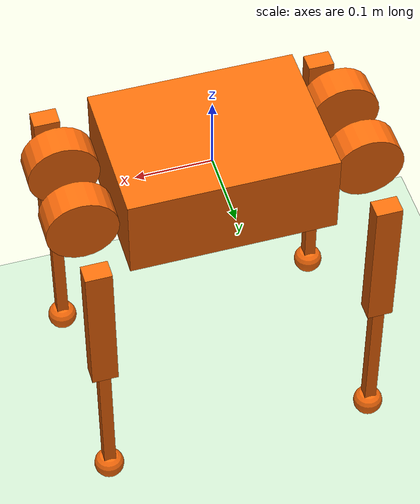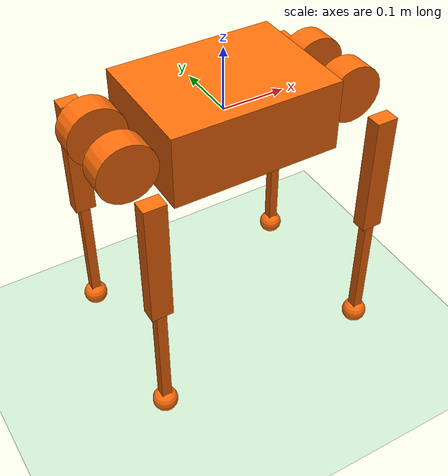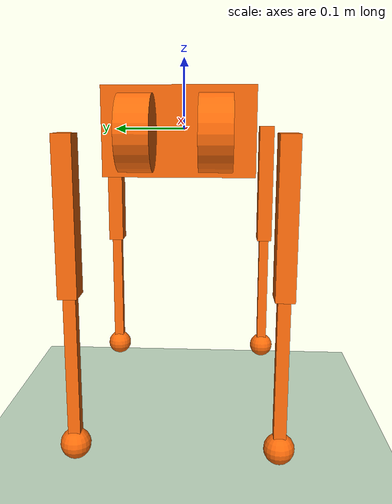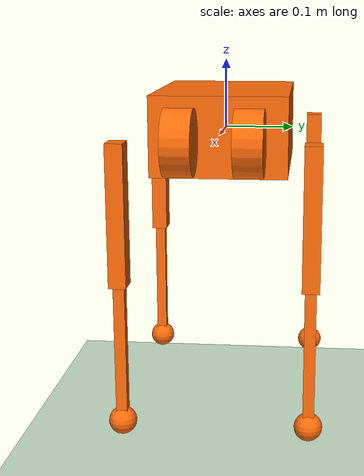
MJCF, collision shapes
<mujoco model="a1">
    <compiler angle="radian" meshdir="meshes/" coordinate="local" />
    <size njmax="500" nconmax="100" />
    <default>
        <joint limited="false" armature="0.01"/>>
        <geom contype="1" conaffinity="0" condim="3" margin="0.001" solref=".02 1" solimp=".8 .8 .01"/>
    </default>
    <asset>
        <mesh name="trunk" file="trunk.stl" />
        <mesh name="hip" file="hip.stl" />
        <mesh name="thigh_mirror" file="thigh_mirror.stl" />
        <mesh name="calf" file="calf.stl" />
        <mesh name="thigh" file="thigh.stl" />
        <texture builtin="flat" height="1278" mark="cross" markrgb="1 1 1" name="texgeom" random="0.01" rgb1="0.8 0.6 0.4" rgb2="0.8 0.6 0.4" type="cube" width="127"/>
        <texture builtin="checker" height="100" name="texplane" rgb1="0 0 0" rgb2="0.8 0.8 0.8" type="2d" width="100"/>
        <material name="MatPlane" reflectance="0.5" shininess="1" specular="1" texrepeat="60 60" texture="texplane"/>
        <material name="geom" texture="texgeom" texuniform="true"/>
        <texture type="skybox" builtin="gradient" rgb1="0.3 0.5 0.7" rgb2="0 0 0" width="512" height="512"/>
    </asset>
    <option timestep="0.0002" iterations="50" solver="PGS" gravity="0 0 -9.81">
        <flag energy="enable" gravity="enable"/>
    </option>
    <worldbody>
        <geom conaffinity="1" condim="3" friction = "1 0.5 0.5" material="MatPlane" name="floor" pos="0 0 -0.5" rgba="0.8 0.9 0.8 1" size="40 40 40" type="plane"/>
        <light directional="true" diffuse=".8 .8 .8" specular=".2 .2 .2" pos="0 0 0.5" dir="0 0 -1"/>
        <body name="Body" pos="0 0 0" euler="0 0 0">
            <inertial pos="0.012731 0.002186 0.000515" mass="4.713"
                fullinertia="1.62642913929261E-06 2.16302130147651E-06 2.57241198744282E-06 -2.15537782337987E-07 -2.3575284377688E-08 -1.07181784470334E-08"/>
            <joint type="free" name="free"/>
            <geom size="0.0005 0.0005 0.0005" type="box" contype="0" conaffinity="0" group="1" />
            <geom type="mesh" contype="0" conaffinity="0" group="1" rgba="1 0.423529 0.0392157 1" mesh="trunk" />
            <geom size="0.1335 0.097 0.057" type="box" rgba="1 0.423529 0.0392157 0" />
            <geom size="0.0005 0.0005 0.0005" type="box" contype="0" conaffinity="0" group="1" rgba="0.8 0 0 0" />
            <geom size="0.0005 0.0005 0.0005" type="box" rgba="0.8 0 0 0" />
            <body name="FR_hip" pos="0.183 -0.047 0">
                <inertial pos="-0.003311 -0.000635 3.1e-05" quat="0.507528 0.506268 0.491507 0.494499" mass="0.696" diaginertia="0.000807752 0.00055293 0.000468983" />
                <joint name="FR_hip_joint" pos="0 0 0" axis="1 0 0" limited="true" range="-0.1 0.1" />
                <geom quat="0 1 0 0" type="mesh" contype="0" conaffinity="0" group="1" rgba="1 0.423529 0.0392157 1" mesh="hip" />
                <geom size="0.046 0.02" quat="0.707107 0.707107 0 0" type="cylinder" rgba="1 0.423529 0.0392157 0" />
                <body name="FR_thigh" pos="0 -0.08505 0">
                    <inertial pos="-0.003237 0.022327 -0.027326" quat="0.999125 -0.00256393 -0.0409531 -0.00806091" mass="1.013" diaginertia="0.00555739 0.00513936 0.00133944" />
                    <joint name="FR_thigh_joint" pos="0 0 0" axis="0 1 0" limited="true" range="-1.0472 4.18879" />
                    <geom type="mesh" contype="0" conaffinity="0" group="1" rgba="1 0.423529 0.0392157 1" mesh="thigh_mirror" />
                    <geom size="0.1 0.01225 0.017" pos="0 0 -0.1" quat="0.707107 0 0.707107 0" type="box" rgba="1 0.423529 0.0392157 0" />
                    <body name="FR_calf" pos="0 0 -0.2">
                        <inertial pos="0.00472659 0 -0.131975" quat="0.706886 0.017653 0.017653 0.706886" mass="0.226" diaginertia="0.00340344 0.00339393 3.54834e-05" />
                        <joint name="FR_calf_joint" pos="0 0 0" axis="0 1 0" limited="true" range="-2.69653 -0.916298" />
                        <geom type="mesh" contype="0" conaffinity="0" group="1" rgba="1 0.423529 0.0392157 1" mesh="calf" />
                        <geom size="0.1 0.008 0.008" pos="0 0 -0.1" quat="0.707107 0 0.707107 0" type="box" rgba="1 0.423529 0.0392157 0" />
                        <geom size="0.01" pos="0 0 -0.2" contype="0" conaffinity="0" group="1" rgba="1 0.423529 0.0392157 1" />
                        <geom size="0.02" pos="0 0 -0.2" rgba="1 0.423529 0.0392157 0" />
                    </body>
                </body>
            </body>
            <body name="FL_hip" pos="0.183 0.047 0">
                <inertial pos="-0.003311 0.000635 3.1e-05" quat="0.494499 0.491507 0.506268 0.507528" mass="0.696" diaginertia="0.000807752 0.00055293 0.000468983" />
                <joint name="FL_hip_joint" pos="0 0 0" axis="1 0 0" limited="true" range="-0.1 0.1" />
                <geom type="mesh" contype="0" conaffinity="0" group="1" rgba="1 0.423529 0.0392157 1" mesh="hip" />
                <geom size="0.046 0.02" quat="0.707107 0.707107 0 0" type="cylinder" rgba="1 0.423529 0.0392157 0" />
                <body name="FL_thigh" pos="0 0.08505 0">
                    <inertial pos="-0.003237 -0.022327 -0.027326" quat="0.999125 0.00256393 -0.0409531 0.00806091" mass="1.013" diaginertia="0.00555739 0.00513936 0.00133944" />
                    <joint name="FL_thigh_joint" pos="0 0 0" axis="0 1 0" limited="true" range="-1.0472 4.18879" />
                    <geom type="mesh" contype="0" conaffinity="0" group="1" rgba="1 0.423529 0.0392157 1" mesh="thigh" />
                    <geom size="0.1 0.01225 0.017" pos="0 0 -0.1" quat="0.707107 0 0.707107 0" type="box" rgba="1 0.423529 0.0392157 0" />
                    <body name="FL_calf" pos="0 0 -0.2">
                        <inertial pos="0.00472659 0 -0.131975" quat="0.706886 0.017653 0.017653 0.706886" mass="0.226" diaginertia="0.00340344 0.00339393 3.54834e-05" />
                        <joint name="FL_calf_joint" pos="0 0 0" axis="0 1 0" limited="true" range="-2.69653 -0.916298" />
                        <geom type="mesh" contype="0" conaffinity="0" group="1" rgba="1 0.423529 0.0392157 1" mesh="calf" />
                        <geom size="0.1 0.008 0.008" pos="0 0 -0.1" quat="0.707107 0 0.707107 0" type="box" rgba="1 0.423529 0.0392157 0" />
                        <geom size="0.01" pos="0 0 -0.2" contype="0" conaffinity="0" group="1" rgba="1 0.423529 0.0392157 0" />
                        <geom size="0.02" pos="0 0 -0.2" rgba="1 0.423529 0.0392157 0" />
                    </body>
                </body>
            </body>
            <body name="RR_hip" pos="-0.183 -0.047 0">
                <inertial pos="0.003311 -0.000635 3.1e-05" quat="0.491507 0.494499 0.507528 0.506268" mass="0.696" diaginertia="0.000807752 0.00055293 0.000468983" />
                <joint name="RR_hip_joint" pos="0 0 0" axis="1 0 0" limited="true" range="-0.1 0.1" />
                <geom quat="0 0 0 -1" type="mesh" contype="0" conaffinity="0" group="1" rgba="1 0.423529 0.0392157 1" mesh="hip" />
                <geom size="0.046 0.02" quat="0.707107 0.707107 0 0" type="cylinder" rgba="1 0.423529 0.0392157 0" />
                <body name="RR_thigh" pos="0 -0.08505 0">
                    <inertial pos="-0.003237 0.022327 -0.027326" quat="0.999125 -0.00256393 -0.0409531 -0.00806091" mass="1.013" diaginertia="0.00555739 0.00513936 0.00133944" />
                    <joint name="RR_thigh_joint" pos="0 0 0" axis="0 1 0" limited="true" range="-1.0472 4.18879" />
                    <geom type="mesh" contype="0" conaffinity="0" group="1" rgba="1 0.423529 0.0392157 1" mesh="thigh_mirror" />
                    <geom size="0.1 0.01225 0.017" pos="0 0 -0.1" quat="0.707107 0 0.707107 0" type="box" rgba="1 0.423529 0.0392157 0" />
                    <body name="RR_calf" pos="0 0 -0.2">
                        <inertial pos="0.00472659 0 -0.131975" quat="0.706886 0.017653 0.017653 0.706886" mass="0.226" diaginertia="0.00340344 0.00339393 3.54834e-05" />
                        <joint name="RR_calf_joint" pos="0 0 0" axis="0 1 0" limited="true" range="-2.69653 -0.916298" />
                        <geom type="mesh" contype="0" conaffinity="0" group="1" rgba="1 0.423529 0.0392157 1" mesh="calf" />
                        <geom size="0.1 0.008 0.008" pos="0 0 -0.1" quat="0.707107 0 0.707107 0" type="box" rgba="1 0.423529 0.0392157 0" />
                        <geom size="0.01" pos="0 0 -0.2" contype="0" conaffinity="0" group="1" rgba="1 0.423529 0.0392157 0" />
                        <geom size="0.02" pos="0 0 -0.2" rgba="1 0.423529 0.0392157 0" />
                    </body>
                </body>
            </body>
            <body name="RL_hip" pos="-0.183 0.047 0">
                <inertial pos="0.003311 0.000635 3.1e-05" quat="0.506268 0.507528 0.494499 0.491507" mass="0.696" diaginertia="0.000807752 0.00055293 0.000468983" />
                <joint name="RL_hip_joint" pos="0 0 0" axis="1 0 0" limited="true" range="-0.1 0.1" />
                <geom quat="0 0 1 0" type="mesh" contype="0" conaffinity="0" group="1" rgba="1 0.423529 0.0392157 1" mesh="hip" />
                <geom size="0.046 0.02" quat="0.707107 0.707107 0 0" type="cylinder" rgba="1 0.423529 0.0392157 0" />
                <body name="RL_thigh" pos="0 0.08505 0">
                    <inertial pos="-0.003237 -0.022327 -0.027326" quat="0.999125 0.00256393 -0.0409531 0.00806091" mass="1.013" diaginertia="0.00555739 0.00513936 0.00133944" />
                    <joint name="RL_thigh_joint" pos="0 0 0" axis="0 1 0" limited="true" range="-1.0472 4.18879" />
                    <geom type="mesh" contype="0" conaffinity="0" group="1" rgba="1 0.423529 0.0392157 1" mesh="thigh" />
                    <geom size="0.1 0.01225 0.017" pos="0 0 -0.1" quat="0.707107 0 0.707107 0" type="box" rgba="1 0.423529 0.0392157 0" />
                    <body name="RL_calf" pos="0 0 -0.2">
                        <inertial pos="0.00472659 0 -0.131975" quat="0.706886 0.017653 0.017653 0.706886" mass="0.226" diaginertia="0.00340344 0.00339393 3.54834e-05" />
                        <joint name="RL_calf_joint" pos="0 0 0" axis="0 1 0" limited="true" range="-2.69653 -0.916298" />
                        <geom type="mesh" contype="0" conaffinity="0" group="1" rgba="1 0.423529 0.0392157 1" mesh="calf" />
                        <geom size="0.1 0.008 0.008" pos="0 0 -0.1" quat="0.707107 0 0.707107 0" type="box" rgba="1 0.423529 0.0392157 0" />
                        <geom size="0.01" pos="0 0 -0.2" contype="0" conaffinity="0" group="1" rgba="1 0.423529 0.0392157 0" />
                        <geom size="0.02" pos="0 0 -0.2" rgba="1 0.423529 0.0392157 0" />
                    </body>
                </body>
            </body>
        </body>
    </worldbody>

    <actuator>
        <general name="RR_hip_motor" ctrllimited="true" ctrlrange="-20 20" joint="RR_hip_joint"
                 gainprm="0.0578" gear="47.2660957561"/>
        <general name="RR_thigh_motor" ctrllimited="true" ctrlrange="-20 20" joint="RR_thigh_joint"
                 gainprm="0.0578" gear="47.2660957561"/>
        <general name="RR_calf_motor" ctrllimited="true" ctrlrange="-20 20" joint="RR_calf_joint"
                 gainprm="0.0578" gear="47.2660957561"/>

        <general name="RL_hip_motor" ctrllimited="true" ctrlrange="-20 20" joint="RL_hip_joint"
                 gainprm="0.0578" gear="47.2660957561"/>
        <general name="RL_thigh_motor" ctrllimited="true" ctrlrange="-20 20" joint="RL_thigh_joint"
                 gainprm="0.0578" gear="47.2660957561"/>
        <general name="RL_calf_motor" ctrllimited="true" ctrlrange="-20 20" joint="RL_calf_joint"
                 gainprm="0.0578" gear="47.2660957561"/>

        <general name="FL_hip_motor" ctrllimited="true" ctrlrange="-20 20" joint="FL_hip_joint"
                 gainprm="0.0578" gear="47.2660957561"/>
        <general name="FL_thigh_motor" ctrllimited="true" ctrlrange="-20 20" joint="FL_thigh_joint"
                 gainprm="0.0578" gear="47.2660957561"/>
        <general name="FL_calf_motor" ctrllimited="true" ctrlrange="-20 20" joint="FL_calf_joint"
                 gainprm="0.0578" gear="47.2660957561"/>

        <general name="FR_hip_motor" ctrllimited="true" ctrlrange="-20 20" joint="FR_hip_joint"
                 gainprm="0.0578" gear="47.2660957561"/>
        <general name="FR_thigh_motor" ctrllimited="true" ctrlrange="-20 20" joint="FR_thigh_joint"
                 gainprm="0.0578" gear="47.2660957561"/>
        <general name="FR_calf_motor" ctrllimited="true" ctrlrange="-20 20" joint="FR_calf_joint"
                 gainprm="0.0578" gear="47.2660957561"/>
    </actuator>
</mujoco>
